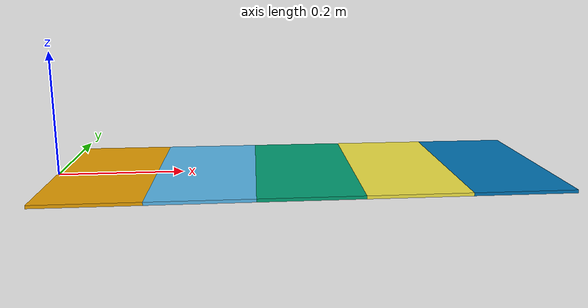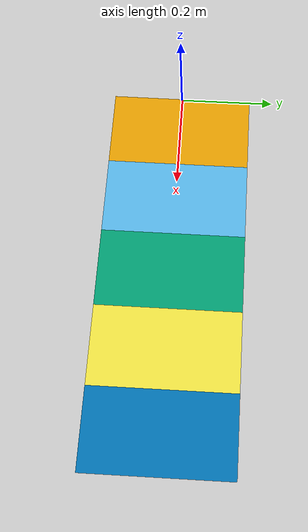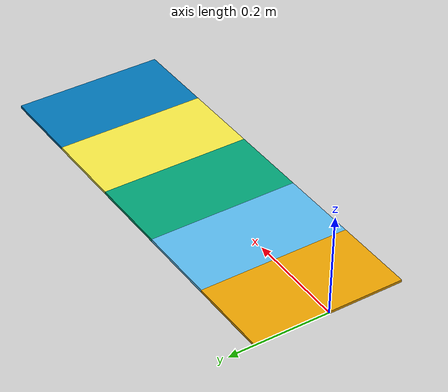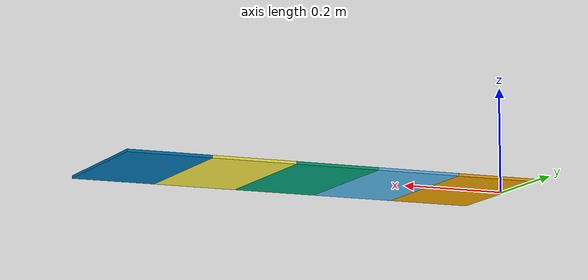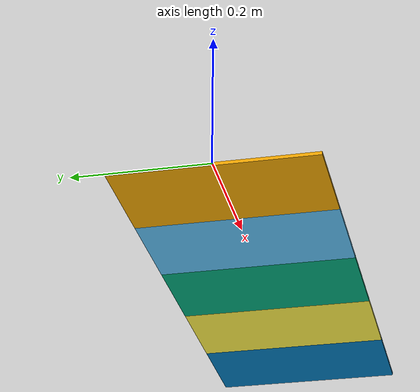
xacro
<?xml version="1.0"?>
<robot xmlns:xacro="http://www.ros.org/wiki/xacro" name="cardboard">

    <xacro:property name="length" value="0.8" />
    <xacro:property name="width" value=".30" />
    <xacro:property name="thickness" value=".005" />
    <xacro:property name="joints" value="4" />

    <link name="input_flap">
    <visual>
        <geometry>
            <box size="${length/(joints+1)} ${width} ${thickness}"/>
        </geometry>
        <origin rpy="0 0 0" xyz="${0.5*length/(joints+1)} 0 0"/>
    </visual>
    </link>

        <link name="link_4">
            <visual>
                <geometry>
                    <box size="${length/(joints+1)} ${width} ${thickness}"/>
                </geometry>
                <origin rpy="0 0 0" xyz="${0.5*length/(joints+1)} 0 0"/>
            </visual>
        </link>

        <joint name="joint4" type="revolute">
            <axis xyz="0 -1 0"/>
            <limit effort="1000.0" lower="-2.96705973" upper="2.96705973" velocity="0.5"/>
            <origin rpy="0 0 0" xyz="${length/(joints+1)} 0.0 0"/>
            <parent link="input_flap"/>
            <child link="link_4"/>
        </joint>

        <link name="link_2">
            <visual>
                <geometry>
                    <box size="${length/(joints+1)} ${width} ${thickness}"/>
                </geometry>
                <origin rpy="0 0 0" xyz="${0.5*length/(joints+1)} 0 0"/>
            </visual>
        </link>

        <joint name="joint2" type="revolute">
            <axis xyz="0 -1 0"/>
            <limit effort="1000.0" lower="-2.96705973" upper="2.96705973" velocity="0.5"/>
            <origin rpy="0 0 0" xyz="${length/(joints+1)} 0.0 0"/>
            <parent link="link_4"/>
            <child link="link_2"/>
        </joint>

        <link name="link_3">
            <visual>
                <geometry>
                    <box size="${length/(joints+1)} ${width} ${thickness}"/>
                </geometry>
                <origin rpy="0 0 0" xyz="${0.5*length/(joints+1)} 0 0"/>
            </visual>
        </link>

        <joint name="joint3" type="revolute">
            <axis xyz="0 -1 0"/>
            <limit effort="1000.0" lower="-2.96705973" upper="2.96705973" velocity="0.5"/>
            <origin rpy="0 0 0" xyz="${length/(joints+1)} 0.0 0"/>
            <parent link="link_2"/>
            <child link="link_3"/>
        </joint>

        <link name="link_5">
            <visual>
                <geometry>
                    <box size="${length/(joints+1)} ${width} ${thickness}"/>
                </geometry>
                <origin rpy="0 0 0" xyz="${0.5*length/(joints+1)} 0 0"/>
            </visual>
        </link>

        <joint name="joint5" type="revolute">
            <axis xyz="0 -1 0"/>
            <limit effort="1000.0" lower="-2.96705973" upper="2.96705973" velocity="0.5"/>
            <origin rpy="0 0 0" xyz="${length/(joints+1)} 0.0 0"/>
            <parent link="link_3"/>
            <child link="link_5"/>
        </joint>

</robot>
